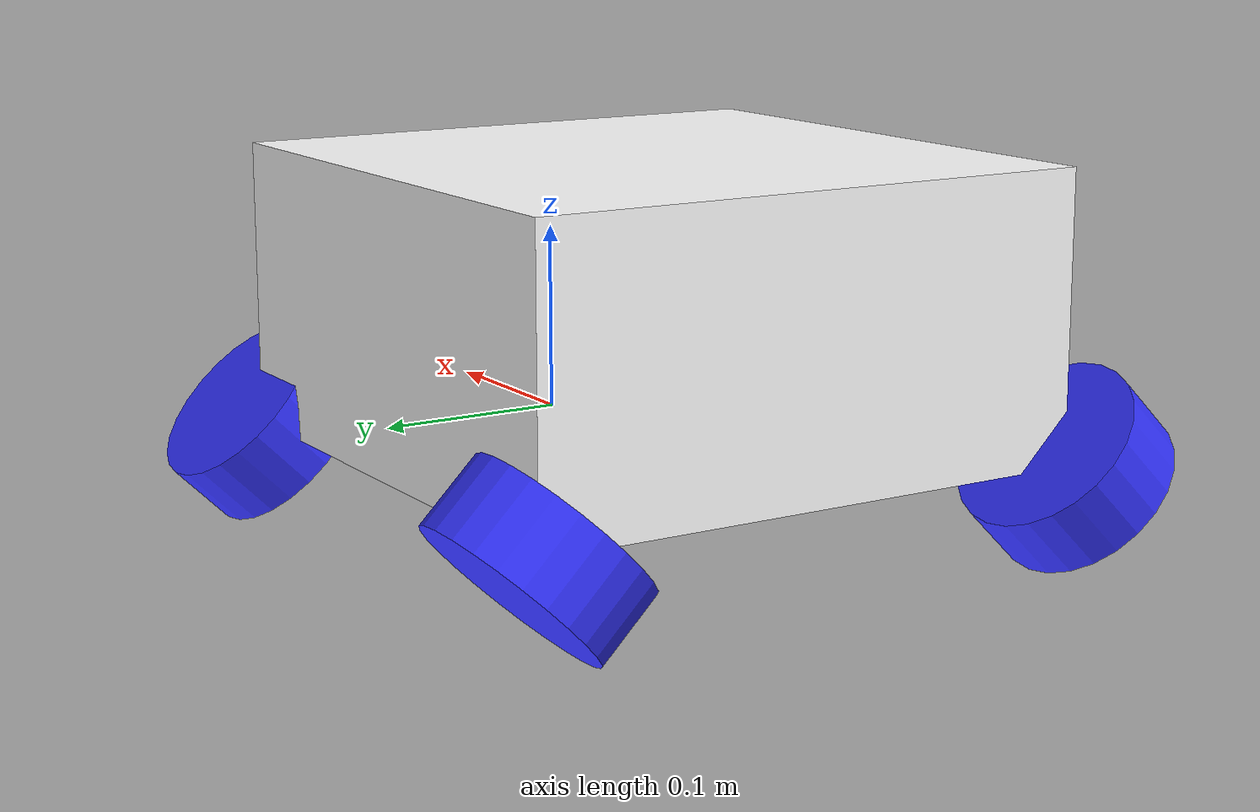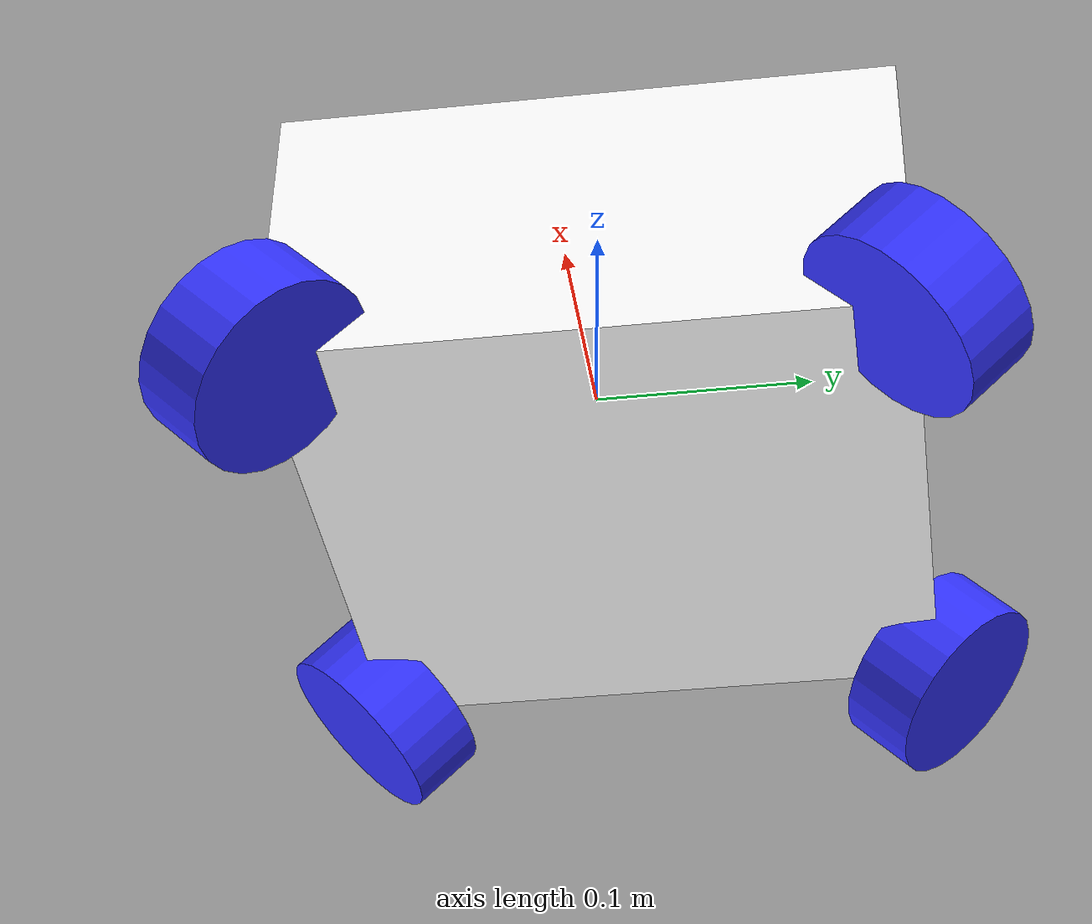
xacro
<?xml version="1.0"?>
<robot xmlns:xacro="http://www.ros.org/wiki/xacro" >

    <xacro:include filename="inertial_macros.xacro"/>

    <material name="white">
        <color rgba="1 1 1 1" />
    </material>

    <material name="orange">
        <color rgba="1 0.3 0.1 1"/>
    </material>

    <material name="blue">
        <color rgba="0.2 0.2 1 1"/>
    </material>

    <material name="black">
        <color rgba="0 0 0 1"/>
    </material>

    <!-- BASE LINK -->

    <link name="base_link">
    </link>

    <!-- CHASSIS LINK -->

    <joint name="chassis_joint" type="fixed">
        <parent link="base_link"/>
        <child link="chassis"/>
        <origin xyz="-0.1 0 0"/>
    </joint>

    <link name="chassis">
        <visual>
            <origin xyz="0 0 0.075"/>
            <geometry>
                <box size="0.3 0.3 0.15"/>
            </geometry>
            <material name="white"/>
        </visual>
        <collision>
            <origin xyz="0 0 0.075"/>
            <geometry>
                <box size="0.3 0.3 0.15"/>
            </geometry>
        </collision>
        <xacro:inertial_box mass="0.5" x="0.3" y="0.3" z="0.15">
            <origin xyz="0 0 0.075" rpy="0 0 0"/>
        </xacro:inertial_box>
    </link>

    <!-- OMNI WHEEL LINKS -->

    <!-- Front-left omni wheel -->
    <joint name="front_left_wheel_joint" type="continuous">
        <parent link="chassis"/>
        <child link="front_left_wheel"/>
        <origin xyz="0.15 0.15 0" rpy="-${pi/4} 0 0" />
        <axis xyz="0 0 1"/>
    </joint>

    <link name="front_left_wheel">
        <visual>
            <geometry>
                <cylinder radius="0.05" length="0.04"/>
            </geometry>
            <material name="blue"/>
        </visual>
        <collision>
            <geometry>
                <cylinder radius="0.05" length="0.04"/>
            </geometry>
        </collision>
        <xacro:inertial_cylinder mass="0.1" length="0.04" radius="0.05">
            <origin xyz="0 0 0" rpy="0 0 0"/>
        </xacro:inertial_cylinder>
    </link>

    <!-- Front-right omni wheel -->
    <joint name="front_right_wheel_joint" type="continuous">
        <parent link="chassis"/>
        <child link="front_right_wheel"/>
        <origin xyz="0.15 -0.15 0" rpy="${pi/4} 0 0" />
        <axis xyz="0 0 1"/>
    </joint>

    <link name="front_right_wheel">
        <visual>
            <geometry>
                <cylinder radius="0.05" length="0.04"/>
            </geometry>
            <material name="blue"/>
        </visual>
        <collision>
            <geometry>
                <cylinder radius="0.05" length="0.04"/>
            </geometry>
        </collision>
        <xacro:inertial_cylinder mass="0.1" length="0.04" radius="0.05">
            <origin xyz="0 0 0" rpy="0 0 0"/>
        </xacro:inertial_cylinder>
    </link>

    <!-- Rear-left omni wheel -->
    <joint name="rear_left_wheel_joint" type="continuous">
        <parent link="chassis"/>
        <child link="rear_left_wheel"/>
        <origin xyz="-0.15 0.15 0" rpy="${pi/4} 0 0" />
        <axis xyz="0 0 1"/>
    </joint>

    <link name="rear_left_wheel">
        <visual>
            <geometry>
                <cylinder radius="0.05" length="0.04"/>
            </geometry>
            <material name="blue"/>
        </visual>
        <collision>
            <geometry>
                <cylinder radius="0.05" length="0.04"/>
            </geometry>
        </collision>
        <xacro:inertial_cylinder mass="0.1" length="0.04" radius="0.05">
            <origin xyz="0 0 0" rpy="0 0 0"/>
        </xacro:inertial_cylinder>
    </link>

    <!-- Rear-right omni wheel -->
    <joint name="rear_right_wheel_joint" type="continuous">
        <parent link="chassis"/>
        <child link="rear_right_wheel"/>
        <origin xyz="-0.15 -0.15 0" rpy="-${pi/4} 0 0" />
        <axis xyz="0 0 1"/>
    </joint>

    <link name="rear_right_wheel">
        <visual>
            <geometry>
                <cylinder radius="0.05" length="0.04"/>
            </geometry>
            <material name="blue"/>
        </visual>
        <collision>
            <geometry>
                <cylinder radius="0.05" length="0.04"/>
            </geometry>
        </collision>
        <xacro:inertial_cylinder mass="0.1" length="0.04" radius="0.05">
            <origin xyz="0 0 0" rpy="0 0 0"/>
        </xacro:inertial_cylinder>
    </link>

</robot>
